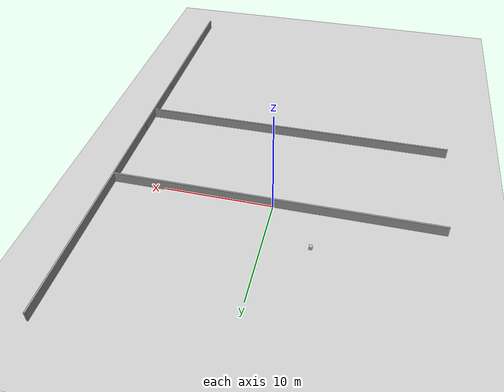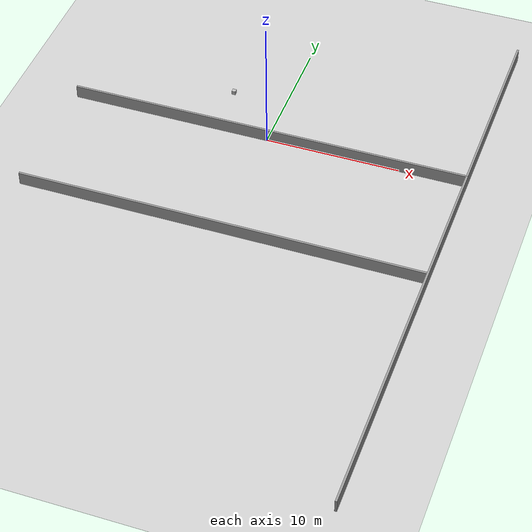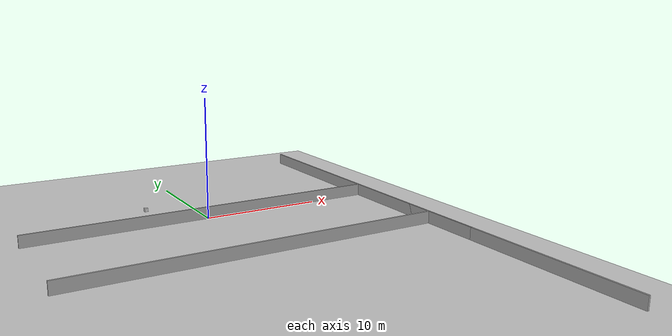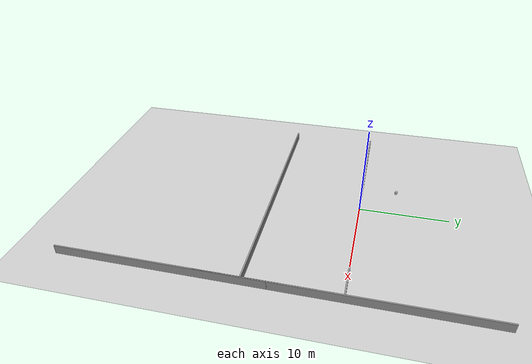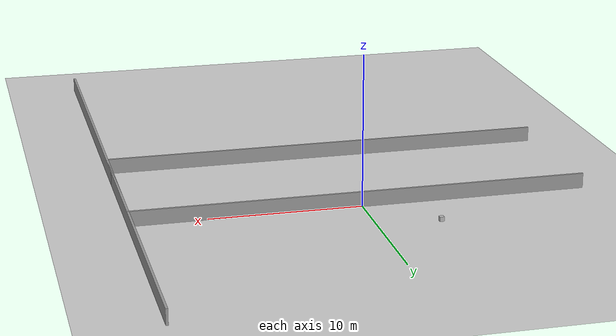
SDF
<?xml version="1.0" ?>
<sdf version="1.6">
  <world name="default">
    <include>
      <uri>model://sun</uri>
    </include>
    <include>
      <uri>model://ground_plane</uri>
    </include>

    <model name="EmptyRoom">
      <include>
        <uri>model://empty_room</uri>
      </include>
    </model>

    <model name="DynamicObstacle">
       <pose>-4 4 0.15 0 0 0</pose>
       <include>
        <uri>model://dynamic_obstacle</uri>
      </include>
    </model>

  </world>
</sdf>

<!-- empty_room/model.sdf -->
<sdf version='1.6'>
  <model name='EmptyRoom'>
    <pose frame=''>0.0 0.0 0.0 0.0 0.0 0.0</pose>
    <link name='Wall_1'>
      <collision name='Wall_1_Collision'>
        <geometry>
          <box>
            <size>30 0.15 1</size>
          </box>
        </geometry>
        <pose frame=''>0 0 0.5 0 -0 0</pose>
      </collision>
      <visual name='Wall_1_Visual'>
        <pose frame=''>0 0 0.5 0 -0 0</pose>
        <geometry>
          <box>
            <size>30 0.15 1</size>
          </box>
        </geometry>
        <material>
          <script>
            <uri>file://media/materials/scripts/gazebo.material</uri>
            <name>Gazebo/Grey</name>
          </script>
          <ambient>1 1 1 1</ambient>
        </material>
        <meta>
          <layer>0</layer>
        </meta>
      </visual>
      <pose frame=''>15 0 0 0 -0 -1.5708</pose>
    </link>
    <link name='Wall_2'>
      <collision name='Wall_2_Collision'>
        <geometry>
          <box>
            <size>30 0.15 1</size>
          </box>
        </geometry>
        <pose frame=''>0 0 0.5 0 -0 0</pose>
      </collision>
      <visual name='Wall_2_Visual'>
        <pose frame=''>0 0 0.5 0 -0 0</pose>
        <geometry>
          <box>
            <size>30 0.15 1</size>
          </box>
        </geometry>
        <material>
          <script>
            <uri>file://media/materials/scripts/gazebo.material</uri>
            <name>Gazebo/Grey</name>
          </script>
          <ambient>1 1 1 1</ambient>
        </material>
        <meta>
          <layer>0</layer>
        </meta>
      </visual>
      <pose frame=''>-0 0 0 0 -0 0</pose>
    </link>
    <link name='Wall_3'>
      <collision name='Wall_3_Collision'>
        <geometry>
          <box>
            <size>30 0.15 1</size>
          </box>
        </geometry>
        <pose frame=''>0 -15 0.5 0 -0 0</pose>
      </collision>
      <visual name='Wall_3_Visual'>
        <pose frame=''>0 -15 0.5 0 -0 0</pose>
        <geometry>
          <box>
            <size>30 0.15 1</size>
          </box>
        </geometry>
        <material>
          <script>
            <uri>file://media/materials/scripts/gazebo.material</uri>
            <name>Gazebo/Grey</name>
          </script>
          <ambient>1 1 1 1</ambient>
        </material>
        <meta>
          <layer>0</layer>
        </meta>
      </visual>
      <pose frame=''>0 -15 0 0 -0 1.5708</pose>
    </link>
    <link name='Wall_4'>
      <collision name='Wall_4_Collision'>
        <geometry>
          <box>
            <size>0 0.15 1</size>
          </box>
        </geometry>
        <pose frame=''>0 15 0.5 0 -0 0</pose>
      </collision>
      <visual name='Wall_4_Visual'>
        <pose frame=''>0 15 0.5 0 -0 0</pose>
        <geometry>
          <box>
            <size>30 0.15 1</size>
          </box>
        </geometry>
        <material>
          <script>
            <uri>file://media/materials/scripts/gazebo.material</uri>
            <name>Gazebo/Grey</name>
          </script>
          <ambient>1 1 1 1</ambient>
        </material>
        <meta>
          <layer>0</layer>
        </meta>
      </visual>
      <pose frame=''>-0 4.925 0 0 -0 3.14159</pose>
    </link>
    <static>1</static>
  </model>
</sdf>

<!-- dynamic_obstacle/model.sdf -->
<sdf version="1.6">
    <model name="DynamicObstacle">
      <pose>0 0 0.15 0 0 0</pose>
      <link name="link">
	<gravity>1</gravity>
        <inertial>
	  <inertia>
	    <ixx>0.17</ixx>
            <ixy>0.00</ixy>
            <ixz>0.00</ixz>
            <iyy>0.17</iyy>
            <iyz>0.00</iyz>
            <izz>0.17</izz>
          </inertia>
          <mass>100</mass>
        </inertial>
        <kinematic>false</kinematic>
        <collision name="collision">
          <max_contacts>0</max_contacts>
          <geometry>
            <box>
              <size>0.3 0.3 0.3</size>
            </box>
          </geometry>
	  <surface>
            <friction>
              <ode>
                <mu>0.0</mu>
                <mu2>0.0</mu2>
              </ode>
            </friction>
            <bounce>
              <restitution_coefficient>0.0</restitution_coefficient>
              <threshold>0.0</threshold>
      	  </bounce>
	  <contact>
            <ode>
              <kp>2000000000</kp>
	      <kd>1</kd>
              <max_vel>2</max_vel>
              <min_depth>0.00</min_depth>
            </ode>
          </contact>
          </surface>
        </collision>
        <visual name="visual">
          <geometry>
            <box>
              <size>0.3 0.3 0.3</size>
            </box>
          </geometry>
        </visual>
      </link>
      <plugin name="random" filename="libRandomVelocityPlugin.so">
        <link>link</link>
        <initial_velocity>0 1 0</initial_velocity>
        <velocity_factor>0.9</velocity_factor>
        <update_period>5</update_period>
        <min_z>-5</min_z>
        <max_z>0</max_z>
      </plugin>
    </model>
</sdf>
